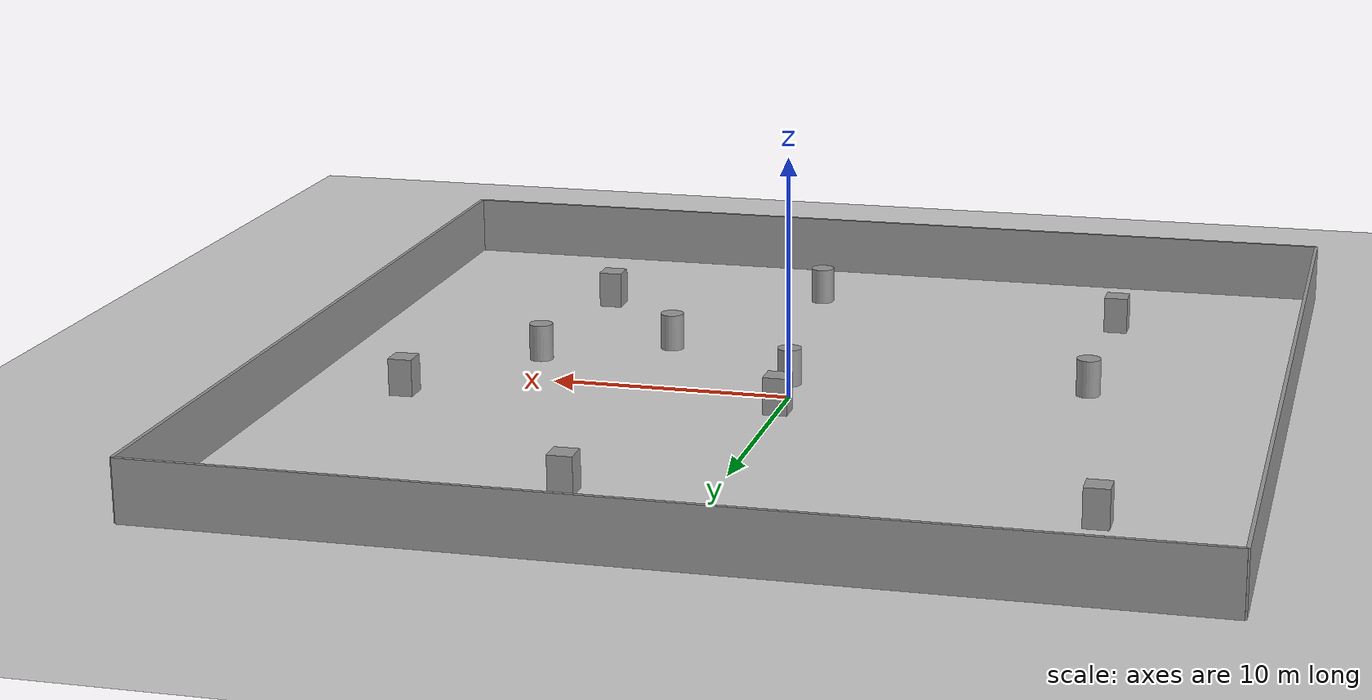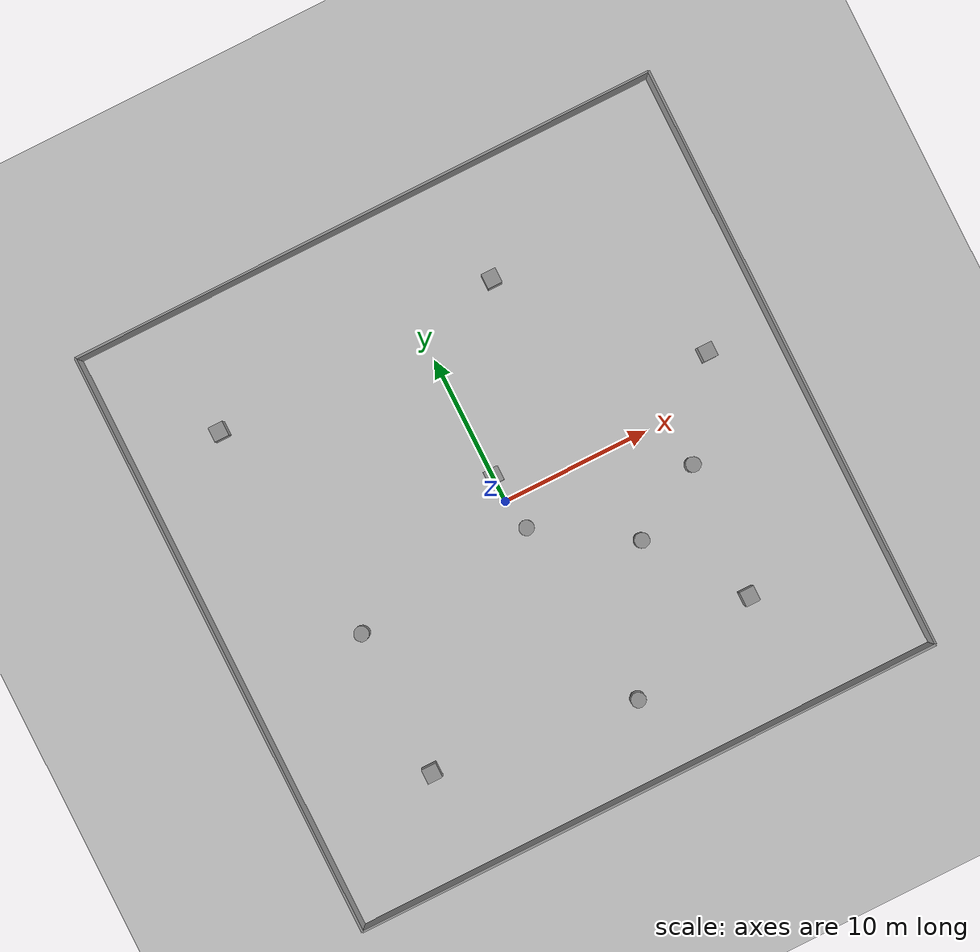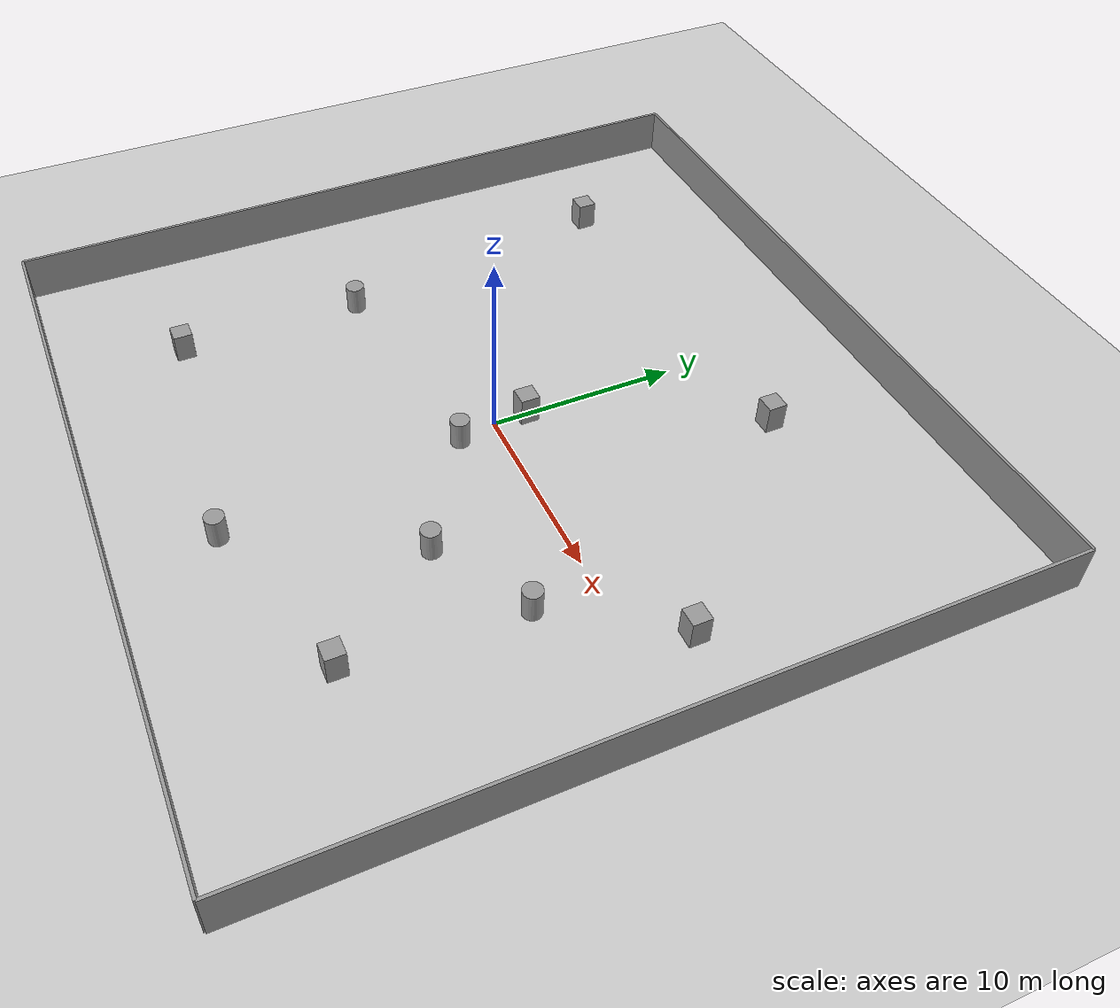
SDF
<sdf version="1.7">
 <world name="default">
  <light name="sun" type="directional">
   <pose>0 0 10 0 -0 0</pose>
   <diffuse>0.8 0.8 0.8 1</diffuse>
   <specular>0.2 0.2 0.2 1</specular>
   <attenuation>
    <range>1000</range>
    <constant>0.9</constant>
    <linear>0.01</linear>
    <quadratic>0.001</quadratic>
   </attenuation>
   <direction>-0.5 0.1 -0.9</direction>
   <spot><inner_angle>0</inner_angle><outer_angle>0</outer_angle><falloff>0</falloff></spot>
  </light>
  <model name="ground_plane">
   <static>1</static>
   <link name="link">
    <collision name="collision">
     <geometry><plane><normal>0 0 1</normal><size>100 100</size></plane></geometry>
     <surface>
      <contact><collide_bitmask>65535</collide_bitmask></contact>
      <friction><ode><mu>100</mu><mu2>50</mu2></ode></friction>
     </surface>
    </collision>
    <visual name="visual">
     <cast_shadows>0</cast_shadows>
     <geometry><plane><normal>0 0 1</normal><size>100 100</size></plane></geometry>
     <material>
      <script><uri>file://media/materials/scripts/gazebo.material</uri><name>Gazebo/Grey</name></script>
     </material>
    </visual>
   </link>
  </model>
  <gravity>0 0 -9.8</gravity>
  <magnetic_field>6e-06 2.3e-05 -4.2e-05</magnetic_field>
  <atmosphere type="adiabatic"/>
  <physics type="ode">
   <max_step_size>0.001</max_step_size>
   <real_time_factor>1</real_time_factor>
   <real_time_update_rate>1000</real_time_update_rate>
  </physics>
  <scene><ambient>0.4 0.4 0.4 1</ambient><background>0.7 0.7 0.7 1</background><shadows>1</shadows></scene>
  <spherical_coordinates>
   <surface_model>EARTH_WGS84</surface_model>
   <latitude_deg>0</latitude_deg>
   <longitude_deg>0</longitude_deg>
   <elevation>0</elevation>
   <heading_deg>0</heading_deg>
  </spherical_coordinates>
  <model name="unit_box">
   <pose>0.045061 1.76786 0.499995 0 -1e-05 0</pose>
   <link name="link">
    <inertial>
     <mass>1</mass>
     <inertia>
      <ixx>0.166667</ixx>
      <ixy>0</ixy>
      <ixz>0</ixz>
      <iyy>0.166667</iyy>
      <iyz>0</iyz>
      <izz>0.166667</izz>
     </inertia>
    </inertial>
    <collision name="collision"><geometry><box><size>1 1 2</size></box></geometry></collision>
    <visual name="visual">
     <geometry><box><size>1 1 2</size></box></geometry>
     <material>
      <script><name>Gazebo/Grey</name><uri>file://media/materials/scripts/gazebo.material</uri></script>
     </material>
    </visual>
   </link>
  </model>
  <model name="unit_cylinder">
   <pose>0.444534 -2.06464 0.499998 3e-06 -3e-06 0</pose>
   <link name="link">
    <inertial>
     <mass>1</mass>
     <inertia><ixx>0.145833</ixx><ixy>0</ixy><ixz>0</ixz><iyy>0.145833</iyy><iyz>0</iyz><izz>0.125</izz></inertia>
    </inertial>
    <collision name="collision">
     <geometry><cylinder><radius>0.5</radius><length>2</length></cylinder></geometry>
    </collision>
    <visual name="visual">
     <geometry><cylinder><radius>0.5</radius><length>2</length></cylinder></geometry>
     <material>
      <script><name>Gazebo/Grey</name><uri>file://media/materials/scripts/gazebo.material</uri></script>
     </material>
    </visual>
   </link>
  </model>
  <model name="lidar.world">
   <link name="Wall_1">
    <collision name="Wall_1_Collision">
     <geometry><box><size>40 0.15 2.5</size></box></geometry>
     <pose>0 0 1.25 0 -0 0</pose>
    </collision>
    <visual name="Wall_1_Visual">
     <pose>0 0 1.25 0 -0 0</pose>
     <geometry><box><size>40 0.15 2.5</size></box></geometry>
     <material>
      <script><uri>file://media/materials/scripts/gazebo.material</uri><name>Gazebo/Grey</name></script>
      <ambient>1 1 1 1</ambient>
     </material>
     <meta><layer>0</layer></meta>
    </visual>
    <pose>-20 0 0 0 -0 -1.5708</pose>
   </link>
   <link name="Wall_2">
    <collision name="Wall_2_Collision">
     <geometry><box><size>40 0.15 2.5</size></box></geometry>
     <pose>0 0 1.25 0 -0 0</pose>
    </collision>
    <visual name="Wall_2_Visual">
     <pose>0 0 1.25 0 -0 0</pose>
     <geometry><box><size>40 0.15 2.5</size></box></geometry>
     <material>
      <script><uri>file://media/materials/scripts/gazebo.material</uri><name>Gazebo/Grey</name></script>
      <ambient>1 1 1 1</ambient>
     </material>
     <meta><layer>0</layer></meta>
    </visual>
    <pose>-0 -20 0 0 -0 0</pose>
   </link>
   <link name="Wall_3">
    <collision name="Wall_3_Collision">
     <geometry><box><size>40 0.15 2.5</size></box></geometry>
     <pose>0 0 1.25 0 -0 0</pose>
    </collision>
    <visual name="Wall_3_Visual">
     <pose>0 0 1.25 0 -0 0</pose>
     <geometry><box><size>40 0.15 2.5</size></box></geometry>
     <material>
      <script><uri>file://media/materials/scripts/gazebo.material</uri><name>Gazebo/Grey</name></script>
      <ambient>1 1 1 1</ambient>
     </material>
     <meta><layer>0</layer></meta>
    </visual>
    <pose>20 0 0 0 -0 1.5708</pose>
   </link>
   <link name="Wall_4">
    <collision name="Wall_4_Collision">
     <geometry><box><size>40 0.15 2.5</size></box></geometry>
     <pose>0 0 1.25 0 -0 0</pose>
    </collision>
    <visual name="Wall_4_Visual">
     <pose>0 0 1.25 0 -0 0</pose>
     <geometry><box><size>40 0.15 2.5</size></box></geometry>
     <material>
      <script><uri>file://media/materials/scripts/gazebo.material</uri><name>Gazebo/Grey</name></script>
      <ambient>1 1 1 1</ambient>
     </material>
     <meta><layer>0</layer></meta>
    </visual>
    <pose>0 20 0 0 -0 3.14159</pose>
   </link>
   <static>1</static>
  </model>
  <model name="unit_box_0">
   <pose>-11.7842 -13.1946 0.499995 0 1e-05 0</pose>
   <link name="link">
    <inertial>
     <mass>1</mass>
     <inertia>
      <ixx>0.166667</ixx>
      <ixy>0</ixy>
      <ixz>0</ixz>
      <iyy>0.166667</iyy>
      <iyz>0</iyz>
      <izz>0.166667</izz>
     </inertia>
    </inertial>
    <collision name="collision"><geometry><box><size>1 1 2</size></box></geometry></collision>
    <visual name="visual">
     <geometry><box><size>1 1 2</size></box></geometry>
     <material>
      <script><name>Gazebo/Grey</name><uri>file://media/materials/scripts/gazebo.material</uri></script>
     </material>
    </visual>
   </link>
  </model>
  <model name="unit_cylinder_0">
   <pose>1.88536 -14.8744 0.499998 3e-06 -4e-06 0</pose>
   <link name="link">
    <inertial>
     <mass>1</mass>
     <inertia><ixx>0.145833</ixx><ixy>0</ixy><ixz>0</ixz><iyy>0.145833</iyy><iyz>0</iyz><izz>0.125</izz></inertia>
    </inertial>
    <collision name="collision">
     <geometry><cylinder><radius>0.5</radius><length>2</length></cylinder></geometry>
    </collision>
    <visual name="visual">
     <geometry><cylinder><radius>0.5</radius><length>2</length></cylinder></geometry>
     <material>
      <script><name>Gazebo/Grey</name><uri>file://media/materials/scripts/gazebo.material</uri></script>
     </material>
    </visual>
   </link>
  </model>
  <model name="unit_cylinder_1">
   <pose>6.57323 -6.01325 0.499992 -3e-06 4e-06 0</pose>
   <link name="link">
    <inertial>
     <mass>1</mass>
     <inertia><ixx>0.145833</ixx><ixy>0</ixy><ixz>0</ixz><iyy>0.145833</iyy><iyz>0</iyz><izz>0.125</izz></inertia>
    </inertial>
    <collision name="collision">
     <geometry><cylinder><radius>0.5</radius><length>2</length></cylinder></geometry>
    </collision>
    <visual name="visual">
     <geometry><cylinder><radius>0.5</radius><length>2</length></cylinder></geometry>
     <material>
      <script><name>Gazebo/Grey</name><uri>file://media/materials/scripts/gazebo.material</uri></script>
     </material>
    </visual>
   </link>
  </model>
  <model name="unit_box_1">
   <pose>-14.153 12.0008 0.499995 -1e-05 -0 -0</pose>
   <link name="link">
    <inertial>
     <mass>1</mass>
     <inertia>
      <ixx>0.166667</ixx>
      <ixy>0</ixy>
      <ixz>0</ixz>
      <iyy>0.166667</iyy>
      <iyz>0</iyz>
      <izz>0.166667</izz>
     </inertia>
    </inertial>
    <collision name="collision"><geometry><box><size>1 1 2</size></box></geometry></collision>
    <visual name="visual">
     <geometry><box><size>1 1 2</size></box></geometry>
     <material>
      <script><name>Gazebo/Grey</name><uri>file://media/materials/scripts/gazebo.material</uri></script>
     </material>
    </visual>
   </link>
  </model>
  <model name="unit_box_2">
   <pose>5.49474 12.9225 0.499995 0 1e-05 0</pose>
   <link name="link">
    <inertial>
     <mass>1</mass>
     <inertia>
      <ixx>0.166667</ixx>
      <ixy>0</ixy>
      <ixz>0</ixz>
      <iyy>0.166667</iyy>
      <iyz>0</iyz>
      <izz>0.166667</izz>
     </inertia>
    </inertial>
    <collision name="collision"><geometry><box><size>1 1 2</size></box></geometry></collision>
    <visual name="visual">
     <geometry><box><size>1 1 2</size></box></geometry>
     <material>
      <script><name>Gazebo/Grey</name><uri>file://media/materials/scripts/gazebo.material</uri></script>
     </material>
    </visual>
   </link>
  </model>
  <model name="unit_box_3">
   <pose>15.5559 2.74019 0.499995 -1e-05 -0 -0</pose>
   <link name="link">
    <inertial>
     <mass>1</mass>
     <inertia>
      <ixx>0.166667</ixx>
      <ixy>0</ixy>
      <ixz>0</ixz>
      <iyy>0.166667</iyy>
      <iyz>0</iyz>
      <izz>0.166667</izz>
     </inertia>
    </inertial>
    <collision name="collision"><geometry><box><size>1 1 2</size></box></geometry></collision>
    <visual name="visual">
     <geometry><box><size>1 1 2</size></box></geometry>
     <material>
      <script><name>Gazebo/Grey</name><uri>file://media/materials/scripts/gazebo.material</uri></script>
     </material>
    </visual>
   </link>
  </model>
  <model name="unit_cylinder_2">
   <pose>11.5853 -3.19358 0.499997 3e-06 4e-06 -0</pose>
   <link name="link">
    <inertial>
     <mass>1</mass>
     <inertia><ixx>0.145833</ixx><ixy>0</ixy><ixz>0</ixz><iyy>0.145833</iyy><iyz>0</iyz><izz>0.125</izz></inertia>
    </inertial>
    <collision name="collision">
     <geometry><cylinder><radius>0.5</radius><length>2</length></cylinder></geometry>
    </collision>
    <visual name="visual">
     <geometry><cylinder><radius>0.5</radius><length>2</length></cylinder></geometry>
     <material>
      <script><name>Gazebo/Grey</name><uri>file://media/materials/scripts/gazebo.material</uri></script>
     </material>
    </visual>
   </link>
  </model>
  <model name="unit_cylinder_3">
   <pose>-11.8092 -3.37154 0.499993 -3e-06 -4e-06 -0</pose>
   <link name="link">
    <inertial>
     <mass>1</mass>
     <inertia><ixx>0.145833</ixx><ixy>0</ixy><ixz>0</ixz><iyy>0.145833</iyy><iyz>0</iyz><izz>0.125</izz></inertia>
    </inertial>
    <collision name="collision">
     <geometry><cylinder><radius>0.5</radius><length>2</length></cylinder></geometry>
    </collision>
    <visual name="visual">
     <geometry><cylinder><radius>0.5</radius><length>2</length></cylinder></geometry>
     <material>
      <script><name>Gazebo/Grey</name><uri>file://media/materials/scripts/gazebo.material</uri></script>
     </material>
    </visual>
   </link>
  </model>
  <model name="unit_box_4">
   <pose>11.0576 -12.1856 0.5 0 -0 0</pose>
   <link name="link">
    <inertial>
     <mass>1</mass>
     <inertia>
      <ixx>0.166667</ixx>
      <ixy>0</ixy>
      <ixz>0</ixz>
      <iyy>0.166667</iyy>
      <iyz>0</iyz>
      <izz>0.166667</izz>
     </inertia>
    </inertial>
    <collision name="collision"><geometry><box><size>1 1 2</size></box></geometry></collision>
    <visual name="visual">
     <geometry><box><size>1 1 2</size></box></geometry>
     <material>
      <script><name>Gazebo/Grey</name><uri>file://media/materials/scripts/gazebo.material</uri></script>
     </material>
    </visual>
   </link>
  </model>
 </world>
</sdf>
